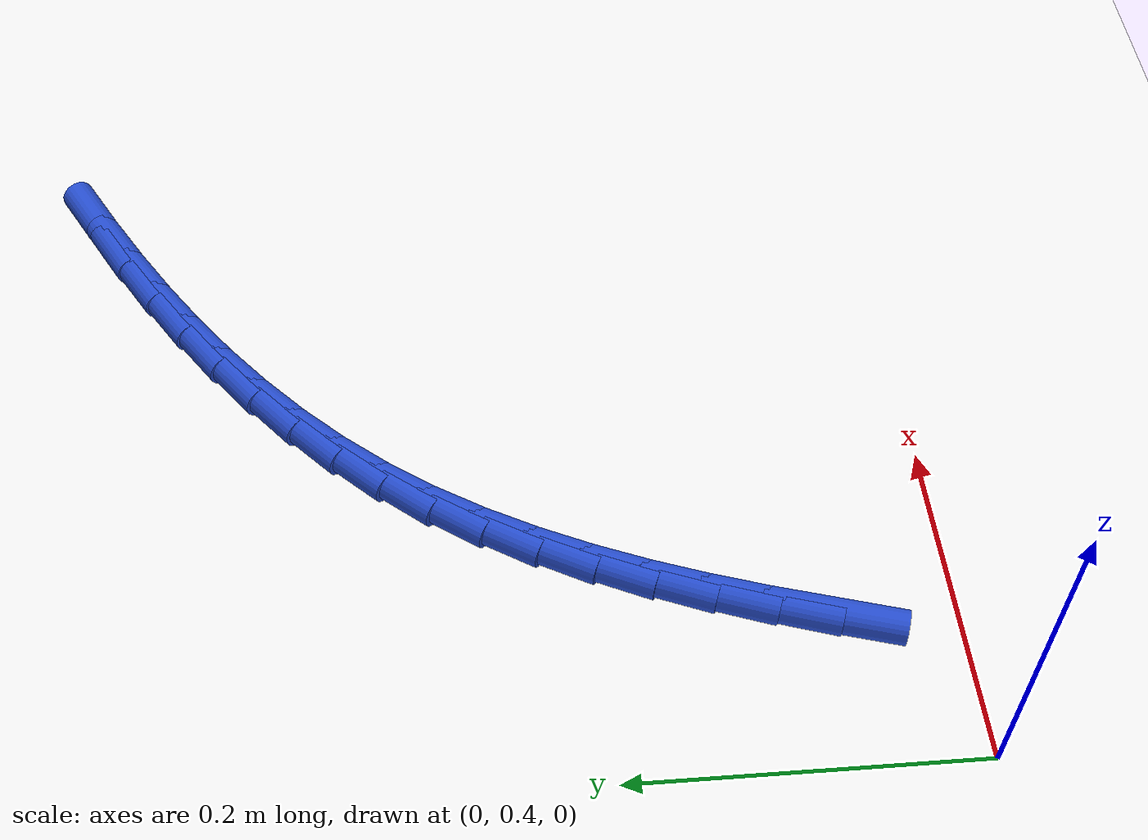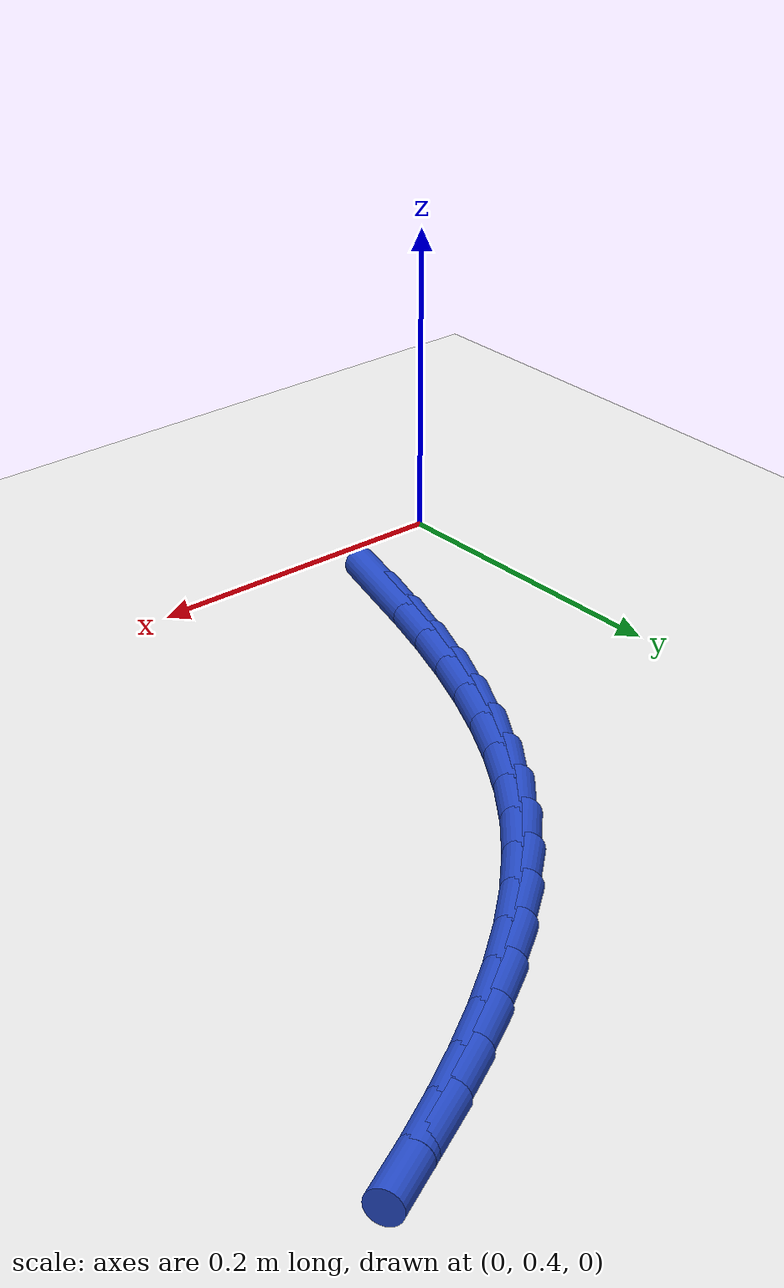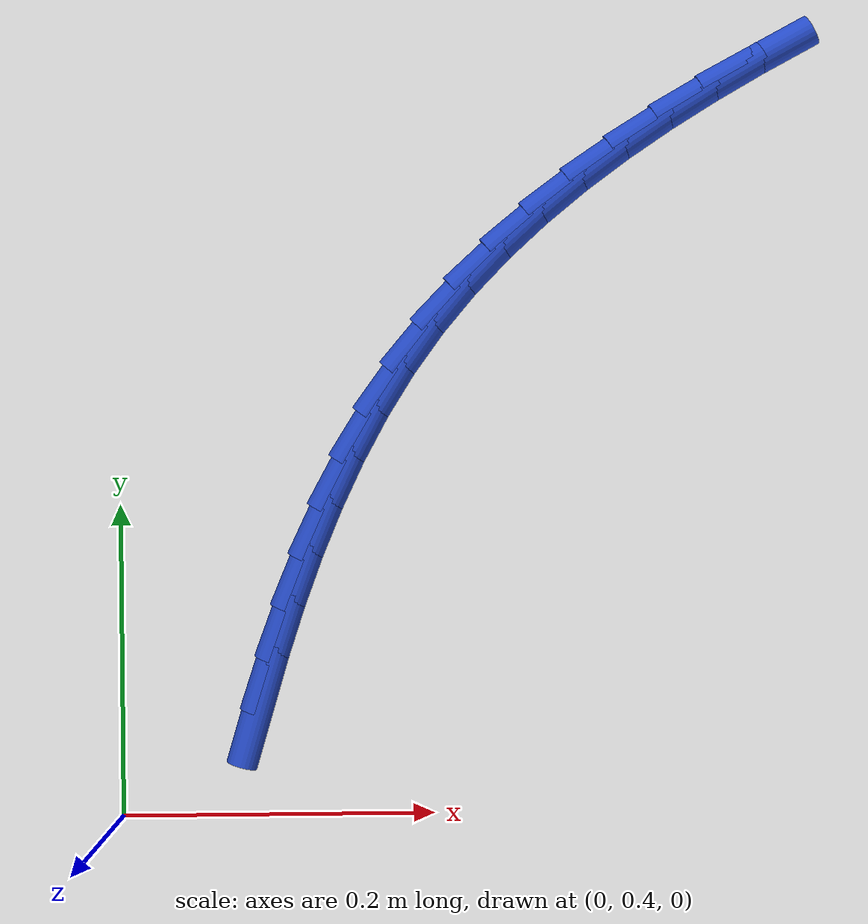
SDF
<sdf version="1.6">
 <world name="default">
  <model name="ground_plane">
   <static>1</static>
   <link name="link">
    <collision name="collision">
     <geometry><plane><normal>0 0 1</normal><size>100 100</size></plane></geometry>
     <surface><friction><ode><mu>100</mu><mu2>50</mu2></ode></friction></surface>
    </collision>
    <visual name="visual">
     <cast_shadows>0</cast_shadows>
     <geometry><plane><normal>0 0 1</normal><size>100 100</size></plane></geometry>
     <material>
      <script><uri>file://media/materials/scripts/gazebo.material</uri><name>Gazebo/WhiteGlow</name></script>
     </material>
    </visual>
   </link>
  </model>
  <model name="line">
   <link name="link_14">
    <pose>0.08846406187508797 0.4713735530885005 0.01 0 1.57 1.2814962101043426</pose>
    <collision name="collision">
     <geometry><cylinder><radius>0.01</radius><length>0.08</length></cylinder></geometry>
    </collision>
    <visual name="visual">
     <material>
      <script><name>Gazebo/Blue</name><uri>file://media/materials/scripts/gazebo.material</uri></script>
     </material>
     <geometry><cylinder><radius>0.01</radius><length>0.08</length></cylinder></geometry>
    </visual>
   </link>
   <link name="link_15">
    <pose>0.09837041240502796 0.5046553470846321 0.01 0 1.57 1.2518317260614966</pose>
    <collision name="collision">
     <geometry><cylinder><radius>0.01</radius><length>0.08</length></cylinder></geometry>
    </collision>
    <visual name="visual">
     <material>
      <script><name>Gazebo/Blue</name><uri>file://media/materials/scripts/gazebo.material</uri></script>
     </material>
     <geometry><cylinder><radius>0.01</radius><length>0.08</length></cylinder></geometry>
    </visual>
   </link>
   <link name="link_16">
    <pose>0.1091784335694821 0.5373830556484231 0.01 0 1.57 1.2162766544617851</pose>
    <collision name="collision">
     <geometry><cylinder><radius>0.01</radius><length>0.08</length></cylinder></geometry>
    </collision>
    <visual name="visual">
     <material>
      <script><name>Gazebo/Blue</name><uri>file://media/materials/scripts/gazebo.material</uri></script>
     </material>
     <geometry><cylinder><radius>0.01</radius><length>0.08</length></cylinder></geometry>
    </visual>
   </link>
   <link name="link_17">
    <pose>0.12103690984561777 0.5694192338406652 0.01 0 1.57 1.1745122266760488</pose>
    <collision name="collision">
     <geometry><cylinder><radius>0.01</radius><length>0.08</length></cylinder></geometry>
    </collision>
    <visual name="visual">
     <material>
      <script><name>Gazebo/Blue</name><uri>file://media/materials/scripts/gazebo.material</uri></script>
     </material>
     <geometry><cylinder><radius>0.01</radius><length>0.08</length></cylinder></geometry>
    </visual>
   </link>
   <link name="link_18">
    <pose>0.13409462571060243 0.6006264367221495 0.01 0 1.57 1.1262324496705332</pose>
    <collision name="collision">
     <geometry><cylinder><radius>0.01</radius><length>0.08</length></cylinder></geometry>
    </collision>
    <visual name="visual">
     <material>
      <script><name>Gazebo/Blue</name><uri>file://media/materials/scripts/gazebo.material</uri></script>
     </material>
     <geometry><cylinder><radius>0.01</radius><length>0.08</length></cylinder></geometry>
    </visual>
   </link>
   <link name="link_19">
    <pose>0.14850036564160363 0.630867219353668 0.01 0 1.57 1.0711934784425845</pose>
    <collision name="collision">
     <geometry><cylinder><radius>0.01</radius><length>0.08</length></cylinder></geometry>
    </collision>
    <visual name="visual">
     <material>
      <script><name>Gazebo/Blue</name><uri>file://media/materials/scripts/gazebo.material</uri></script>
     </material>
     <geometry><cylinder><radius>0.01</radius><length>0.08</length></cylinder></geometry>
    </visual>
   </link>
   <link name="link_20">
    <pose>0.16440291411578872 0.6600041367960119 0.01 0 1.57 1.0092794283910438</pose>
    <collision name="collision">
     <geometry><cylinder><radius>0.01</radius><length>0.08</length></cylinder></geometry>
    </collision>
    <visual name="visual">
     <material>
      <script><name>Gazebo/Blue</name><uri>file://media/materials/scripts/gazebo.material</uri></script>
     </material>
     <geometry><cylinder><radius>0.01</radius><length>0.08</length></cylinder></geometry>
    </visual>
   </link>
   <link name="link_21">
    <pose>0.1819510556103252 0.6878997441099728 0.01 0 1.57 0.9405877349512616</pose>
    <collision name="collision">
     <geometry><cylinder><radius>0.01</radius><length>0.08</length></cylinder></geometry>
    </collision>
    <visual name="visual">
     <material>
      <script><name>Gazebo/Blue</name><uri>file://media/materials/scripts/gazebo.material</uri></script>
     </material>
     <geometry><cylinder><radius>0.01</radius><length>0.08</length></cylinder></geometry>
    </visual>
   </link>
   <link name="link_22">
    <pose>0.20129343419691842 0.7144167034551361 0.01 0 1.57 0.8683387658101243</pose>
    <collision name="collision">
     <geometry><cylinder><radius>0.01</radius><length>0.08</length></cylinder></geometry>
    </collision>
    <visual name="visual">
     <material>
      <script><name>Gazebo/Blue</name><uri>file://media/materials/scripts/gazebo.material</uri></script>
     </material>
     <geometry><cylinder><radius>0.01</radius><length>0.08</length></cylinder></geometry>
    </visual>
   </link>
   <link name="link_23">
    <pose>0.22250457253174716 0.7394742154910007 0.01 0 1.57 0.8005762010262795</pose>
    <collision name="collision">
     <geometry><cylinder><radius>0.01</radius><length>0.08</length></cylinder></geometry>
    </collision>
    <visual name="visual">
     <material>
      <script><name>Gazebo/Blue</name><uri>file://media/materials/scripts/gazebo.material</uri></script>
     </material>
     <geometry><cylinder><radius>0.01</radius><length>0.08</length></cylinder></geometry>
    </visual>
   </link>
   <link name="link_24">
    <pose>0.24546334240747048 0.7631407198824405 0.01 0 1.57 0.7388628193276238</pose>
    <collision name="collision">
     <geometry><cylinder><radius>0.01</radius><length>0.08</length></cylinder></geometry>
    </collision>
    <visual name="visual">
     <material>
      <script><name>Gazebo/Blue</name><uri>file://media/materials/scripts/gazebo.material</uri></script>
     </material>
     <geometry><cylinder><radius>0.01</radius><length>0.08</length></cylinder></geometry>
    </visual>
   </link>
   <link name="link_25">
    <pose>0.27001670891289004 0.7855089941616046 0.01 0 1.57 0.683287677241117</pose>
    <collision name="collision">
     <geometry><cylinder><radius>0.01</radius><length>0.08</length></cylinder></geometry>
    </collision>
    <visual name="visual">
     <material>
      <script><name>Gazebo/Blue</name><uri>file://media/materials/scripts/gazebo.material</uri></script>
     </material>
     <geometry><cylinder><radius>0.01</radius><length>0.08</length></cylinder></geometry>
    </visual>
   </link>
   <link name="link_26">
    <pose>0.296011637136807 0.8066718158606411 0.01 0 1.57 0.6337558066527689</pose>
    <collision name="collision">
     <geometry><cylinder><radius>0.01</radius><length>0.08</length></cylinder></geometry>
    </collision>
    <visual name="visual">
     <material>
      <script><name>Gazebo/Blue</name><uri>file://media/materials/scripts/gazebo.material</uri></script>
     </material>
     <geometry><cylinder><radius>0.01</radius><length>0.08</length></cylinder></geometry>
    </visual>
   </link>
   <link name="link_27">
    <pose>0.32329509216802294 0.8267219625116993 0.01 0 1.57 0.5900530305081407</pose>
    <collision name="collision">
     <geometry><cylinder><radius>0.01</radius><length>0.08</length></cylinder></geometry>
    </collision>
    <visual name="visual">
     <material>
      <script><name>Gazebo/Blue</name><uri>file://media/materials/scripts/gazebo.material</uri></script>
     </material>
     <geometry><cylinder><radius>0.01</radius><length>0.08</length></cylinder></geometry>
    </visual>
   </link>
   <link name="link_28">
    <pose>0.351714039095339 0.8457522116469275 0.01 0 1.57 0.551900593607712</pose>
    <collision name="collision">
     <geometry><cylinder><radius>0.01</radius><length>0.08</length></cylinder></geometry>
    </collision>
    <visual name="visual">
     <material>
      <script><name>Gazebo/Blue</name><uri>file://media/materials/scripts/gazebo.material</uri></script>
     </material>
     <geometry><cylinder><radius>0.01</radius><length>0.08</length></cylinder></geometry>
    </visual>
   </link>
   <link name="link_29">
    <pose>0.38111544300755673 0.8638553407984746 0.01 0 1.57 0.518997206537013</pose>
    <collision name="collision">
     <geometry><cylinder><radius>0.01</radius><length>0.08</length></cylinder></geometry>
    </collision>
    <visual name="visual">
     <material>
      <script><name>Gazebo/Blue</name><uri>file://media/materials/scripts/gazebo.material</uri></script>
     </material>
     <geometry><cylinder><radius>0.01</radius><length>0.08</length></cylinder></geometry>
    </visual>
   </link>
   <link name="link_30">
    <pose>0.4113462689934775 0.881124127498489 0.01 0 1.57 0.4910492915164218</pose>
    <collision name="collision">
     <geometry><cylinder><radius>0.01</radius><length>0.08</length></cylinder></geometry>
    </collision>
    <visual name="visual">
     <material>
      <script><name>Gazebo/Blue</name><uri>file://media/materials/scripts/gazebo.material</uri></script>
     </material>
     <geometry><cylinder><radius>0.01</radius><length>0.08</length></cylinder></geometry>
    </visual>
   </link>
  </model>
 </world>
</sdf>
